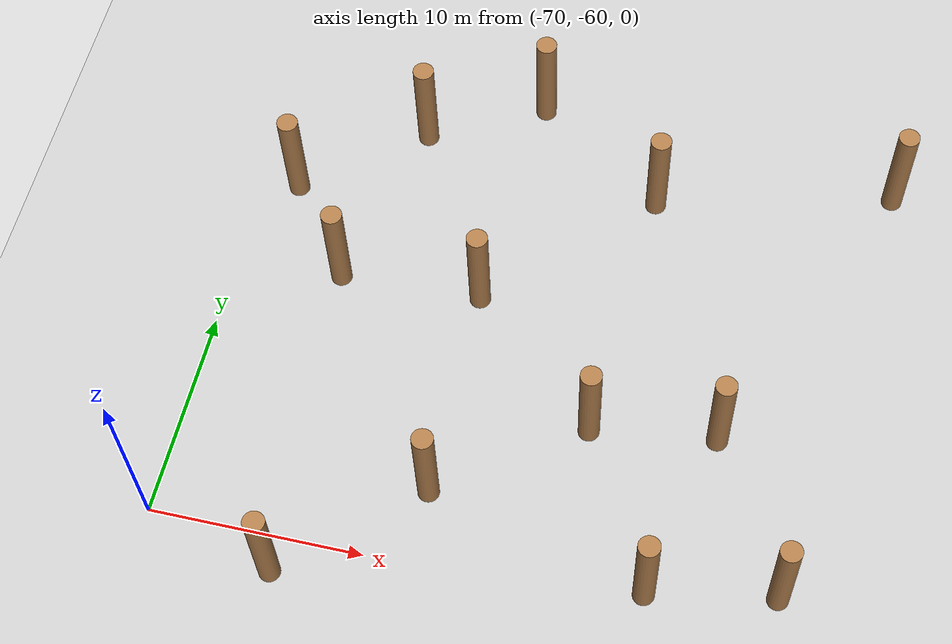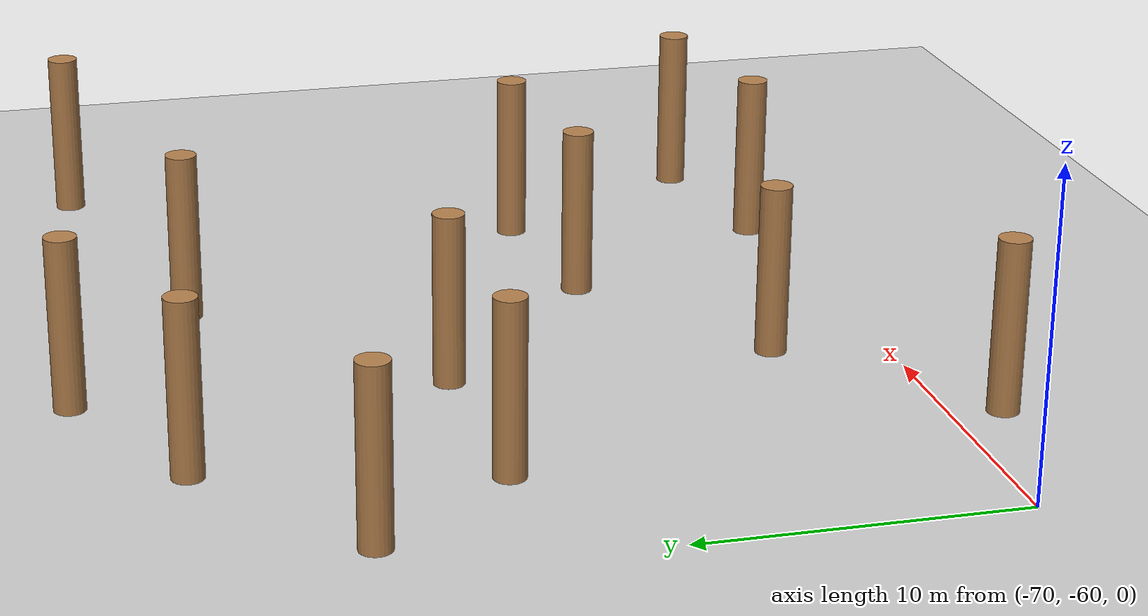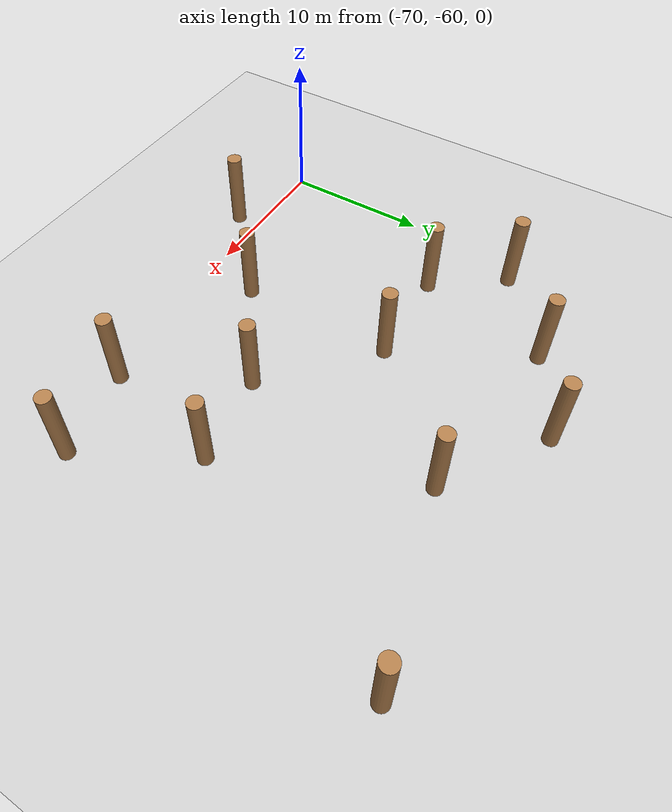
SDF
<sdf version="1.6">
 <world name="default">
  <model name="ground_plane">
   <static>1</static>
   <link name="link">
    <collision name="collision">
     <geometry><plane><normal>0 0 1</normal><size>100 100</size></plane></geometry>
     <surface><friction><ode><mu>100</mu><mu2>50</mu2></ode></friction></surface>
    </collision>
    <visual name="visual">
     <cast_shadows>0</cast_shadows>
     <geometry><plane><normal>0 0 1</normal><size>100 100</size></plane></geometry>
     <material>
      <script><uri>file://media/materials/scripts/gazebo.material</uri><name>Gazebo/Grey</name></script>
     </material>
    </visual>
   </link>
  </model>
  <model name="WoodPillars_10">
   <link name="link_clone_13">
    <inertial>
     <mass>1</mass>
     <inertia><ixx>0.145833</ixx><ixy>0</ixy><ixz>0</ixz><iyy>0.145833</iyy><iyz>0</iyz><izz>0.125</izz></inertia>
    </inertial>
    <pose>32.2715 -23.3528 -3e-06 0 -0 -0.001289</pose>
    <visual name="visual">
     <geometry><cylinder><radius>0.5</radius><length>5.50507</length></cylinder></geometry>
     <material>
      <script><name>Gazebo/Wood</name><uri>file://media/materials/scripts/gazebo.material</uri></script>
      <shader type="pixel"/>
     </material>
    </visual>
    <collision name="collision">
     <geometry><cylinder><radius>0.5</radius><length>5.50507</length></cylinder></geometry>
     <surface>
      <friction>
       <ode><mu>1</mu><mu2>1</mu2><fdir1>0 0 0</fdir1><slip1>0</slip1><slip2>0</slip2></ode>
       <torsional>
        <coefficient>1</coefficient>
        <patch_radius>0</patch_radius>
        <surface_radius>0</surface_radius>
        <use_patch_radius>1</use_patch_radius>
        <ode><slip>0</slip></ode>
       </torsional>
      </friction>
      <bounce><restitution_coefficient>0</restitution_coefficient><threshold>1e+06</threshold></bounce>
      <contact>
       <collide_without_contact>0</collide_without_contact>
       <collide_without_contact_bitmask>1</collide_without_contact_bitmask>
       <collide_bitmask>1</collide_bitmask>
       <ode>
        <soft_cfm>0</soft_cfm>
        <soft_erp>0.2</soft_erp>
        <kp>1e+13</kp>
        <kd>1</kd>
        <max_vel>0.01</max_vel>
        <min_depth>0</min_depth>
       </ode>
       <bullet>
        <split_impulse>1</split_impulse>
        <split_impulse_penetration_threshold>-0.01</split_impulse_penetration_threshold>
        <soft_cfm>0</soft_cfm>
        <soft_erp>0.2</soft_erp>
        <kp>1e+13</kp>
        <kd>1</kd>
       </bullet>
      </contact>
     </surface>
    </collision>
   </link>
   <link name="link_clone_16">
    <inertial>
     <mass>1</mass>
     <inertia><ixx>0.145833</ixx><ixy>0</ixy><ixz>0</ixz><iyy>0.145833</iyy><iyz>0</iyz><izz>0.125</izz></inertia>
    </inertial>
    <pose>32.9662 -11.9429 -3e-06 0 -0 -0.001289</pose>
    <visual name="visual">
     <geometry><cylinder><radius>0.5</radius><length>5.50507</length></cylinder></geometry>
     <material>
      <script><name>Gazebo/Wood</name><uri>file://media/materials/scripts/gazebo.material</uri></script>
      <shader type="pixel"/>
     </material>
    </visual>
    <collision name="collision">
     <geometry><cylinder><radius>0.5</radius><length>5.50507</length></cylinder></geometry>
     <surface>
      <friction>
       <ode><mu>1</mu><mu2>1</mu2><fdir1>0 0 0</fdir1><slip1>0</slip1><slip2>0</slip2></ode>
       <torsional>
        <coefficient>1</coefficient>
        <patch_radius>0</patch_radius>
        <surface_radius>0</surface_radius>
        <use_patch_radius>1</use_patch_radius>
        <ode><slip>0</slip></ode>
       </torsional>
      </friction>
      <bounce><restitution_coefficient>0</restitution_coefficient><threshold>1e+06</threshold></bounce>
      <contact>
       <collide_without_contact>0</collide_without_contact>
       <collide_without_contact_bitmask>1</collide_without_contact_bitmask>
       <collide_bitmask>1</collide_bitmask>
       <ode>
        <soft_cfm>0</soft_cfm>
        <soft_erp>0.2</soft_erp>
        <kp>1e+13</kp>
        <kd>1</kd>
        <max_vel>0.01</max_vel>
        <min_depth>0</min_depth>
       </ode>
       <bullet>
        <split_impulse>1</split_impulse>
        <split_impulse_penetration_threshold>-0.01</split_impulse_penetration_threshold>
        <soft_cfm>0</soft_cfm>
        <soft_erp>0.2</soft_erp>
        <kp>1e+13</kp>
        <kd>1</kd>
       </bullet>
      </contact>
     </surface>
    </collision>
   </link>
   <link name="link_clone_28">
    <inertial>
     <mass>1</mass>
     <inertia><ixx>0.145833</ixx><ixy>0</ixy><ixz>0</ixz><iyy>0.145833</iyy><iyz>0</iyz><izz>0.125</izz></inertia>
    </inertial>
    <pose>27.5353 -14.766 -3e-06 0 -0 -0.001289</pose>
    <visual name="visual">
     <geometry><cylinder><radius>0.5</radius><length>5.50507</length></cylinder></geometry>
     <material>
      <script><name>Gazebo/Wood</name><uri>file://media/materials/scripts/gazebo.material</uri></script>
      <shader type="pixel"/>
     </material>
    </visual>
    <collision name="collision">
     <geometry><cylinder><radius>0.5</radius><length>5.50507</length></cylinder></geometry>
     <surface>
      <friction>
       <ode><mu>1</mu><mu2>1</mu2><fdir1>0 0 0</fdir1><slip1>0</slip1><slip2>0</slip2></ode>
       <torsional>
        <coefficient>1</coefficient>
        <patch_radius>0</patch_radius>
        <surface_radius>0</surface_radius>
        <use_patch_radius>1</use_patch_radius>
        <ode><slip>0</slip></ode>
       </torsional>
      </friction>
      <bounce><restitution_coefficient>0</restitution_coefficient><threshold>1e+06</threshold></bounce>
      <contact>
       <collide_without_contact>0</collide_without_contact>
       <collide_without_contact_bitmask>1</collide_without_contact_bitmask>
       <collide_bitmask>1</collide_bitmask>
       <ode>
        <soft_cfm>0</soft_cfm>
        <soft_erp>0.2</soft_erp>
        <kp>1e+13</kp>
        <kd>1</kd>
        <max_vel>0.01</max_vel>
        <min_depth>0</min_depth>
       </ode>
       <bullet>
        <split_impulse>1</split_impulse>
        <split_impulse_penetration_threshold>-0.01</split_impulse_penetration_threshold>
        <soft_cfm>0</soft_cfm>
        <soft_erp>0.2</soft_erp>
        <kp>1e+13</kp>
        <kd>1</kd>
       </bullet>
      </contact>
     </surface>
    </collision>
   </link>
   <link name="link_clone_29">
    <inertial>
     <mass>1</mass>
     <inertia><ixx>0.145833</ixx><ixy>0</ixy><ixz>0</ixz><iyy>0.145833</iyy><iyz>0</iyz><izz>0.125</izz></inertia>
    </inertial>
    <pose>39.4401 -16.2696 -4e-06 0 -0 -0.001289</pose>
    <visual name="visual">
     <geometry><cylinder><radius>0.5</radius><length>5.50507</length></cylinder></geometry>
     <material>
      <script><name>Gazebo/Wood</name><uri>file://media/materials/scripts/gazebo.material</uri></script>
      <shader type="pixel"/>
     </material>
    </visual>
    <collision name="collision">
     <geometry><cylinder><radius>0.5</radius><length>5.50507</length></cylinder></geometry>
     <surface>
      <friction>
       <ode><mu>1</mu><mu2>1</mu2><fdir1>0 0 0</fdir1><slip1>0</slip1><slip2>0</slip2></ode>
       <torsional>
        <coefficient>1</coefficient>
        <patch_radius>0</patch_radius>
        <surface_radius>0</surface_radius>
        <use_patch_radius>1</use_patch_radius>
        <ode><slip>0</slip></ode>
       </torsional>
      </friction>
      <bounce><restitution_coefficient>0</restitution_coefficient><threshold>1e+06</threshold></bounce>
      <contact>
       <collide_without_contact>0</collide_without_contact>
       <collide_without_contact_bitmask>1</collide_without_contact_bitmask>
       <collide_bitmask>1</collide_bitmask>
       <ode>
        <soft_cfm>0</soft_cfm>
        <soft_erp>0.2</soft_erp>
        <kp>1e+13</kp>
        <kd>1</kd>
        <max_vel>0.01</max_vel>
        <min_depth>0</min_depth>
       </ode>
       <bullet>
        <split_impulse>1</split_impulse>
        <split_impulse_penetration_threshold>-0.01</split_impulse_penetration_threshold>
        <soft_cfm>0</soft_cfm>
        <soft_erp>0.2</soft_erp>
        <kp>1e+13</kp>
        <kd>1</kd>
       </bullet>
      </contact>
     </surface>
    </collision>
   </link>
   <link name="link_clone_34">
    <inertial>
     <mass>1</mass>
     <inertia><ixx>0.145833</ixx><ixy>0</ixy><ixz>0</ixz><iyy>0.145833</iyy><iyz>0</iyz><izz>0.125</izz></inertia>
    </inertial>
    <pose>25.4673 -23.5908 -3e-06 0 -0 -0.001289</pose>
    <visual name="visual">
     <geometry><cylinder><radius>0.5</radius><length>5.50507</length></cylinder></geometry>
     <material>
      <script><name>Gazebo/Wood</name><uri>file://media/materials/scripts/gazebo.material</uri></script>
      <shader type="pixel"/>
     </material>
    </visual>
    <collision name="collision">
     <geometry><cylinder><radius>0.5</radius><length>5.50507</length></cylinder></geometry>
     <surface>
      <friction>
       <ode><mu>1</mu><mu2>1</mu2><fdir1>0 0 0</fdir1><slip1>0</slip1><slip2>0</slip2></ode>
       <torsional>
        <coefficient>1</coefficient>
        <patch_radius>0</patch_radius>
        <surface_radius>0</surface_radius>
        <use_patch_radius>1</use_patch_radius>
        <ode><slip>0</slip></ode>
       </torsional>
      </friction>
      <bounce><restitution_coefficient>0</restitution_coefficient><threshold>1e+06</threshold></bounce>
      <contact>
       <collide_without_contact>0</collide_without_contact>
       <collide_without_contact_bitmask>1</collide_without_contact_bitmask>
       <collide_bitmask>1</collide_bitmask>
       <ode>
        <soft_cfm>0</soft_cfm>
        <soft_erp>0.2</soft_erp>
        <kp>1e+13</kp>
        <kd>1</kd>
        <max_vel>0.01</max_vel>
        <min_depth>0</min_depth>
       </ode>
       <bullet>
        <split_impulse>1</split_impulse>
        <split_impulse_penetration_threshold>-0.01</split_impulse_penetration_threshold>
        <soft_cfm>0</soft_cfm>
        <soft_erp>0.2</soft_erp>
        <kp>1e+13</kp>
        <kd>1</kd>
       </bullet>
      </contact>
     </surface>
    </collision>
   </link>
   <link name="link_clone_7">
    <inertial>
     <mass>1</mass>
     <inertia><ixx>0.145833</ixx><ixy>0</ixy><ixz>0</ixz><iyy>0.145833</iyy><iyz>0</iyz><izz>0.125</izz></inertia>
    </inertial>
    <pose>22.0331 -19.0814 -2e-06 0 -0 -0.001289</pose>
    <visual name="visual">
     <geometry><cylinder><radius>0.5</radius><length>5.50507</length></cylinder></geometry>
     <material>
      <script><name>Gazebo/Wood</name><uri>file://media/materials/scripts/gazebo.material</uri></script>
      <shader type="pixel"/>
     </material>
    </visual>
    <collision name="collision">
     <geometry><cylinder><radius>0.5</radius><length>5.50507</length></cylinder></geometry>
     <surface>
      <friction>
       <ode><mu>1</mu><mu2>1</mu2><fdir1>0 0 0</fdir1><slip1>0</slip1><slip2>0</slip2></ode>
       <torsional>
        <coefficient>1</coefficient>
        <patch_radius>0</patch_radius>
        <surface_radius>0</surface_radius>
        <use_patch_radius>1</use_patch_radius>
        <ode><slip>0</slip></ode>
       </torsional>
      </friction>
      <bounce><restitution_coefficient>0</restitution_coefficient><threshold>1e+06</threshold></bounce>
      <contact>
       <collide_without_contact>0</collide_without_contact>
       <collide_without_contact_bitmask>1</collide_without_contact_bitmask>
       <collide_bitmask>1</collide_bitmask>
       <ode>
        <soft_cfm>0</soft_cfm>
        <soft_erp>0.2</soft_erp>
        <kp>1e+13</kp>
        <kd>1</kd>
        <max_vel>0.01</max_vel>
        <min_depth>0</min_depth>
       </ode>
       <bullet>
        <split_impulse>1</split_impulse>
        <split_impulse_penetration_threshold>-0.01</split_impulse_penetration_threshold>
        <soft_cfm>0</soft_cfm>
        <soft_erp>0.2</soft_erp>
        <kp>1e+13</kp>
        <kd>1</kd>
       </bullet>
      </contact>
     </surface>
    </collision>
   </link>
   <static>0</static>
   <pose>-90.3476 -22.7521 2.75253 0 -0 0.001485</pose>
  </model>
  <model name="WoodPillars_11">
   <link name="link_clone_22">
    <inertial>
     <mass>1</mass>
     <inertia><ixx>0.145833</ixx><ixy>0</ixy><ixz>0</ixz><iyy>0.145833</iyy><iyz>0</iyz><izz>0.125</izz></inertia>
    </inertial>
    <pose>27.313 9.05961 -2e-06 0 -0 -0.001289</pose>
    <visual name="visual">
     <geometry><cylinder><radius>0.5</radius><length>5.50507</length></cylinder></geometry>
     <material>
      <script><name>Gazebo/Wood</name><uri>file://media/materials/scripts/gazebo.material</uri></script>
      <shader type="pixel"/>
     </material>
    </visual>
    <collision name="collision">
     <geometry><cylinder><radius>0.5</radius><length>5.50507</length></cylinder></geometry>
     <surface>
      <friction>
       <ode><mu>1</mu><mu2>1</mu2><fdir1>0 0 0</fdir1><slip1>0</slip1><slip2>0</slip2></ode>
       <torsional>
        <coefficient>1</coefficient>
        <patch_radius>0</patch_radius>
        <surface_radius>0</surface_radius>
        <use_patch_radius>1</use_patch_radius>
        <ode><slip>0</slip></ode>
       </torsional>
      </friction>
      <bounce><restitution_coefficient>0</restitution_coefficient><threshold>1e+06</threshold></bounce>
      <contact>
       <collide_without_contact>0</collide_without_contact>
       <collide_without_contact_bitmask>1</collide_without_contact_bitmask>
       <collide_bitmask>1</collide_bitmask>
       <ode>
        <soft_cfm>0</soft_cfm>
        <soft_erp>0.2</soft_erp>
        <kp>1e+13</kp>
        <kd>1</kd>
        <max_vel>0.01</max_vel>
        <min_depth>0</min_depth>
       </ode>
       <bullet>
        <split_impulse>1</split_impulse>
        <split_impulse_penetration_threshold>-0.01</split_impulse_penetration_threshold>
        <soft_cfm>0</soft_cfm>
        <soft_erp>0.2</soft_erp>
        <kp>1e+13</kp>
        <kd>1</kd>
       </bullet>
      </contact>
     </surface>
    </collision>
   </link>
   <link name="link_clone_33">
    <inertial>
     <mass>1</mass>
     <inertia><ixx>0.145833</ixx><ixy>0</ixy><ixz>0</ixz><iyy>0.145833</iyy><iyz>0</iyz><izz>0.125</izz></inertia>
    </inertial>
    <pose>39.6457 18.8804 -3e-06 0 -0 -0.001289</pose>
    <visual name="visual">
     <geometry><cylinder><radius>0.5</radius><length>5.50507</length></cylinder></geometry>
     <material>
      <script><name>Gazebo/Wood</name><uri>file://media/materials/scripts/gazebo.material</uri></script>
      <shader type="pixel"/>
     </material>
    </visual>
    <collision name="collision">
     <geometry><cylinder><radius>0.5</radius><length>5.50507</length></cylinder></geometry>
     <surface>
      <friction>
       <ode><mu>1</mu><mu2>1</mu2><fdir1>0 0 0</fdir1><slip1>0</slip1><slip2>0</slip2></ode>
       <torsional>
        <coefficient>1</coefficient>
        <patch_radius>0</patch_radius>
        <surface_radius>0</surface_radius>
        <use_patch_radius>1</use_patch_radius>
        <ode><slip>0</slip></ode>
       </torsional>
      </friction>
      <bounce><restitution_coefficient>0</restitution_coefficient><threshold>1e+06</threshold></bounce>
      <contact>
       <collide_without_contact>0</collide_without_contact>
       <collide_without_contact_bitmask>1</collide_without_contact_bitmask>
       <collide_bitmask>1</collide_bitmask>
       <ode>
        <soft_cfm>0</soft_cfm>
        <soft_erp>0.2</soft_erp>
        <kp>1e+13</kp>
        <kd>1</kd>
        <max_vel>0.01</max_vel>
        <min_depth>0</min_depth>
       </ode>
       <bullet>
        <split_impulse>1</split_impulse>
        <split_impulse_penetration_threshold>-0.01</split_impulse_penetration_threshold>
        <soft_cfm>0</soft_cfm>
        <soft_erp>0.2</soft_erp>
        <kp>1e+13</kp>
        <kd>1</kd>
       </bullet>
      </contact>
     </surface>
    </collision>
   </link>
   <link name="link_clone_5">
    <inertial>
     <mass>1</mass>
     <inertia><ixx>0.145833</ixx><ixy>0</ixy><ixz>0</ixz><iyy>0.145833</iyy><iyz>0</iyz><izz>0.125</izz></inertia>
    </inertial>
    <pose>33.2189 14.316 -3e-06 0 -0 -0.001289</pose>
    <visual name="visual">
     <geometry><cylinder><radius>0.5</radius><length>5.50507</length></cylinder></geometry>
     <material>
      <script><name>Gazebo/Wood</name><uri>file://media/materials/scripts/gazebo.material</uri></script>
      <shader type="pixel"/>
     </material>
    </visual>
    <collision name="collision">
     <geometry><cylinder><radius>0.5</radius><length>5.50507</length></cylinder></geometry>
     <surface>
      <friction>
       <ode><mu>1</mu><mu2>1</mu2><fdir1>0 0 0</fdir1><slip1>0</slip1><slip2>0</slip2></ode>
       <torsional>
        <coefficient>1</coefficient>
        <patch_radius>0</patch_radius>
        <surface_radius>0</surface_radius>
        <use_patch_radius>1</use_patch_radius>
        <ode><slip>0</slip></ode>
       </torsional>
      </friction>
      <bounce><restitution_coefficient>0</restitution_coefficient><threshold>1e+06</threshold></bounce>
      <contact>
       <collide_without_contact>0</collide_without_contact>
       <collide_without_contact_bitmask>1</collide_without_contact_bitmask>
       <collide_bitmask>1</collide_bitmask>
       <ode>
        <soft_cfm>0</soft_cfm>
        <soft_erp>0.2</soft_erp>
        <kp>1e+13</kp>
        <kd>1</kd>
        <max_vel>0.01</max_vel>
        <min_depth>0</min_depth>
       </ode>
       <bullet>
        <split_impulse>1</split_impulse>
        <split_impulse_penetration_threshold>-0.01</split_impulse_penetration_threshold>
        <soft_cfm>0</soft_cfm>
        <soft_erp>0.2</soft_erp>
        <kp>1e+13</kp>
        <kd>1</kd>
       </bullet>
      </contact>
     </surface>
    </collision>
   </link>
   <static>0</static>
   <pose>-91.1223 -70.7354 2.75253 0 -0 0.001505</pose>
  </model>
  <model name="WoodPillars_12">
   <link name="link_clone_10">
    <inertial>
     <mass>1</mass>
     <inertia><ixx>0.145833</ixx><ixy>0</ixy><ixz>0</ixz><iyy>0.145833</iyy><iyz>0</iyz><izz>0.125</izz></inertia>
    </inertial>
    <pose>2.50237 12.8939 0 0 -0 -0.001289</pose>
    <visual name="visual">
     <geometry><cylinder><radius>0.5</radius><length>5.50507</length></cylinder></geometry>
     <material>
      <script><name>Gazebo/Wood</name><uri>file://media/materials/scripts/gazebo.material</uri></script>
      <shader type="pixel"/>
     </material>
    </visual>
    <collision name="collision">
     <geometry><cylinder><radius>0.5</radius><length>5.50507</length></cylinder></geometry>
     <surface>
      <friction>
       <ode><mu>1</mu><mu2>1</mu2><fdir1>0 0 0</fdir1><slip1>0</slip1><slip2>0</slip2></ode>
       <torsional>
        <coefficient>1</coefficient>
        <patch_radius>0</patch_radius>
        <surface_radius>0</surface_radius>
        <use_patch_radius>1</use_patch_radius>
        <ode><slip>0</slip></ode>
       </torsional>
      </friction>
      <bounce><restitution_coefficient>0</restitution_coefficient><threshold>1e+06</threshold></bounce>
      <contact>
       <collide_without_contact>0</collide_without_contact>
       <collide_without_contact_bitmask>1</collide_without_contact_bitmask>
       <collide_bitmask>1</collide_bitmask>
       <ode>
        <soft_cfm>0</soft_cfm>
        <soft_erp>0.2</soft_erp>
        <kp>1e+13</kp>
        <kd>1</kd>
        <max_vel>0.01</max_vel>
        <min_depth>0</min_depth>
       </ode>
       <bullet>
        <split_impulse>1</split_impulse>
        <split_impulse_penetration_threshold>-0.01</split_impulse_penetration_threshold>
        <soft_cfm>0</soft_cfm>
        <soft_erp>0.2</soft_erp>
        <kp>1e+13</kp>
        <kd>1</kd>
       </bullet>
      </contact>
     </surface>
    </collision>
   </link>
   <link name="link_clone_19">
    <inertial>
     <mass>1</mass>
     <inertia><ixx>0.145833</ixx><ixy>0</ixy><ixz>0</ixz><iyy>0.145833</iyy><iyz>0</iyz><izz>0.125</izz></inertia>
    </inertial>
    <pose>-3.28611 11.8265 -0 0 -0 -0.001289</pose>
    <visual name="visual">
     <geometry><cylinder><radius>0.5</radius><length>5.50507</length></cylinder></geometry>
     <material>
      <script><name>Gazebo/Wood</name><uri>file://media/materials/scripts/gazebo.material</uri></script>
      <shader type="pixel"/>
     </material>
    </visual>
    <collision name="collision">
     <geometry><cylinder><radius>0.5</radius><length>5.50507</length></cylinder></geometry>
     <surface>
      <friction>
       <ode><mu>1</mu><mu2>1</mu2><fdir1>0 0 0</fdir1><slip1>0</slip1><slip2>0</slip2></ode>
       <torsional>
        <coefficient>1</coefficient>
        <patch_radius>0</patch_radius>
        <surface_radius>0</surface_radius>
        <use_patch_radius>1</use_patch_radius>
        <ode><slip>0</slip></ode>
       </torsional>
      </friction>
      <bounce><restitution_coefficient>0</restitution_coefficient><threshold>1e+06</threshold></bounce>
      <contact>
       <collide_without_contact>0</collide_without_contact>
       <collide_without_contact_bitmask>1</collide_without_contact_bitmask>
       <collide_bitmask>1</collide_bitmask>
       <ode>
        <soft_cfm>0</soft_cfm>
        <soft_erp>0.2</soft_erp>
        <kp>1e+13</kp>
        <kd>1</kd>
        <max_vel>0.01</max_vel>
        <min_depth>0</min_depth>
       </ode>
       <bullet>
        <split_impulse>1</split_impulse>
        <split_impulse_penetration_threshold>-0.01</split_impulse_penetration_threshold>
        <soft_cfm>0</soft_cfm>
        <soft_erp>0.2</soft_erp>
        <kp>1e+13</kp>
        <kd>1</kd>
       </bullet>
      </contact>
     </surface>
    </collision>
   </link>
   <link name="link_clone_31">
    <inertial>
     <mass>1</mass>
     <inertia><ixx>0.145833</ixx><ixy>0</ixy><ixz>0</ixz><iyy>0.145833</iyy><iyz>0</iyz><izz>0.125</izz></inertia>
    </inertial>
    <pose>-1.44135 19.9016 0 0 -0 -0.001289</pose>
    <visual name="visual">
     <geometry><cylinder><radius>0.5</radius><length>5.50507</length></cylinder></geometry>
     <material>
      <script><name>Gazebo/Wood</name><uri>file://media/materials/scripts/gazebo.material</uri></script>
      <shader type="pixel"/>
     </material>
    </visual>
    <collision name="collision">
     <geometry><cylinder><radius>0.5</radius><length>5.50507</length></cylinder></geometry>
     <surface>
      <friction>
       <ode><mu>1</mu><mu2>1</mu2><fdir1>0 0 0</fdir1><slip1>0</slip1><slip2>0</slip2></ode>
       <torsional>
        <coefficient>1</coefficient>
        <patch_radius>0</patch_radius>
        <surface_radius>0</surface_radius>
        <use_patch_radius>1</use_patch_radius>
        <ode><slip>0</slip></ode>
       </torsional>
      </friction>
      <bounce><restitution_coefficient>0</restitution_coefficient><threshold>1e+06</threshold></bounce>
      <contact>
       <collide_without_contact>0</collide_without_contact>
       <collide_without_contact_bitmask>1</collide_without_contact_bitmask>
       <collide_bitmask>1</collide_bitmask>
       <ode>
        <soft_cfm>0</soft_cfm>
        <soft_erp>0.2</soft_erp>
        <kp>1e+13</kp>
        <kd>1</kd>
        <max_vel>0.01</max_vel>
        <min_depth>0</min_depth>
       </ode>
       <bullet>
        <split_impulse>1</split_impulse>
        <split_impulse_penetration_threshold>-0.01</split_impulse_penetration_threshold>
        <soft_cfm>0</soft_cfm>
        <soft_erp>0.2</soft_erp>
        <kp>1e+13</kp>
        <kd>1</kd>
       </bullet>
      </contact>
     </surface>
    </collision>
   </link>
   <static>0</static>
   <pose>-44.1918 -70.8883 2.75253 0 -0 0.001373</pose>
  </model>
  <model name="WoodPillars_13">
   <link name="link_clone_27">
    <inertial>
     <mass>1</mass>
     <inertia><ixx>0.145833</ixx><ixy>0</ixy><ixz>0</ixz><iyy>0.145833</iyy><iyz>0</iyz><izz>0.125</izz></inertia>
    </inertial>
    <pose>4.38632 -25.0605 -1e-06 0 -0 -0.001289</pose>
    <visual name="visual">
     <geometry><cylinder><radius>0.5</radius><length>5.50507</length></cylinder></geometry>
     <material>
      <script><name>Gazebo/Wood</name><uri>file://media/materials/scripts/gazebo.material</uri></script>
      <shader type="pixel"/>
     </material>
    </visual>
    <collision name="collision">
     <geometry><cylinder><radius>0.5</radius><length>5.50507</length></cylinder></geometry>
     <surface>
      <friction>
       <ode><mu>1</mu><mu2>1</mu2><fdir1>0 0 0</fdir1><slip1>0</slip1><slip2>0</slip2></ode>
       <torsional>
        <coefficient>1</coefficient>
        <patch_radius>0</patch_radius>
        <surface_radius>0</surface_radius>
        <use_patch_radius>1</use_patch_radius>
        <ode><slip>0</slip></ode>
       </torsional>
      </friction>
      <bounce><restitution_coefficient>0</restitution_coefficient><threshold>1e+06</threshold></bounce>
      <contact>
       <collide_without_contact>0</collide_without_contact>
       <collide_without_contact_bitmask>1</collide_without_contact_bitmask>
       <collide_bitmask>1</collide_bitmask>
       <ode>
        <soft_cfm>0</soft_cfm>
        <soft_erp>0.2</soft_erp>
        <kp>1e+13</kp>
        <kd>1</kd>
        <max_vel>0.01</max_vel>
        <min_depth>0</min_depth>
       </ode>
       <bullet>
        <split_impulse>1</split_impulse>
        <split_impulse_penetration_threshold>-0.01</split_impulse_penetration_threshold>
        <soft_cfm>0</soft_cfm>
        <soft_erp>0.2</soft_erp>
        <kp>1e+13</kp>
        <kd>1</kd>
       </bullet>
      </contact>
     </surface>
    </collision>
   </link>
   <static>0</static>
   <pose>-43.9989 -11.1335 2.75253 0 -0 0.001424</pose>
  </model>
 </world>
</sdf>
